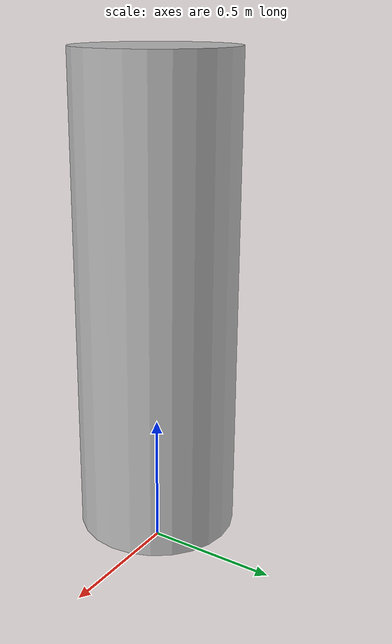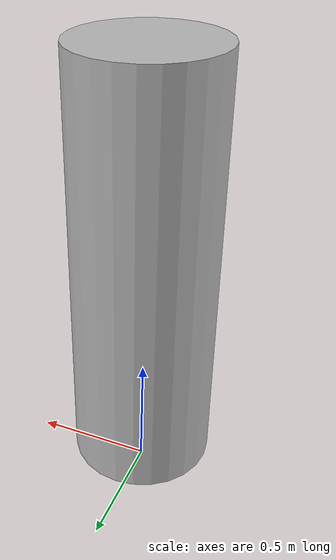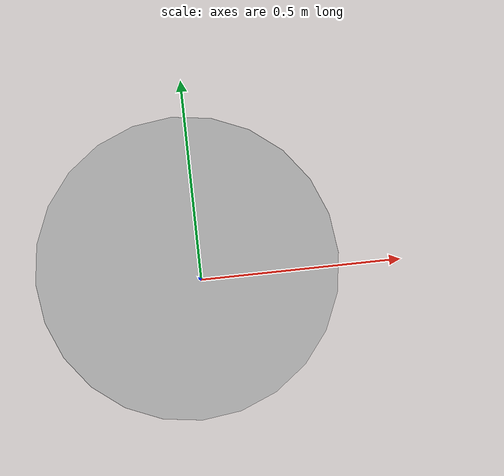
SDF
<?xml version="1.0" ?>
<sdf version="1.6">
  <world name="test_world">
    <physics name="1ms" type="ignored">
      <max_step_size>0.001</max_step_size>
      <real_time_factor>1.0</real_time_factor>
    </physics>
    <plugin filename="gz-sim-physics-system" name="gz::sim::systems::Physics"/>
    <plugin filename="gz-sim-scene-broadcaster-system" name="gz::sim::systems::SceneBroadcaster"/>

    <light type="directional" name="sun">
      <pose>0 0 10 0 0 0</pose>
    </light>

    <model name="person_01">
      <pose>0 0 1 0 0 0</pose>
      <link name="base_link">
        <inertial>
          <mass>70</mass>
          <inertia>
            <ixx>10</ixx><ixy>0</ixy><ixz>0</ixz>
            <iyy>10</iyy><iyz>0</iyz><izz>10</izz>
          </inertia>
        </inertial>
        <collision name="collision">
          <geometry>
            <cylinder><radius>0.3</radius><length>1.8</length></cylinder>
          </geometry>
        </collision>
        <visual name="visual">
          <geometry>
            <cylinder><radius>0.3</radius><length>1.8</length></cylinder>
          </geometry>
        </visual>
      </link>
      <plugin filename="gz-sim-trajectory-follower-system" name="gz::sim::systems::TrajectoryFollower">
        <link_name>base_link</link_name>
        <loop>true</loop>
        <waypoints>
          <waypoint>5 0</waypoint>
          <waypoint>0 0</waypoint>
        </waypoints>
        <force>50</force>
        <torque>10</torque>
        <range_tolerance>0.2</range_tolerance>
      </plugin>
    </model>
  </world>
</sdf>
